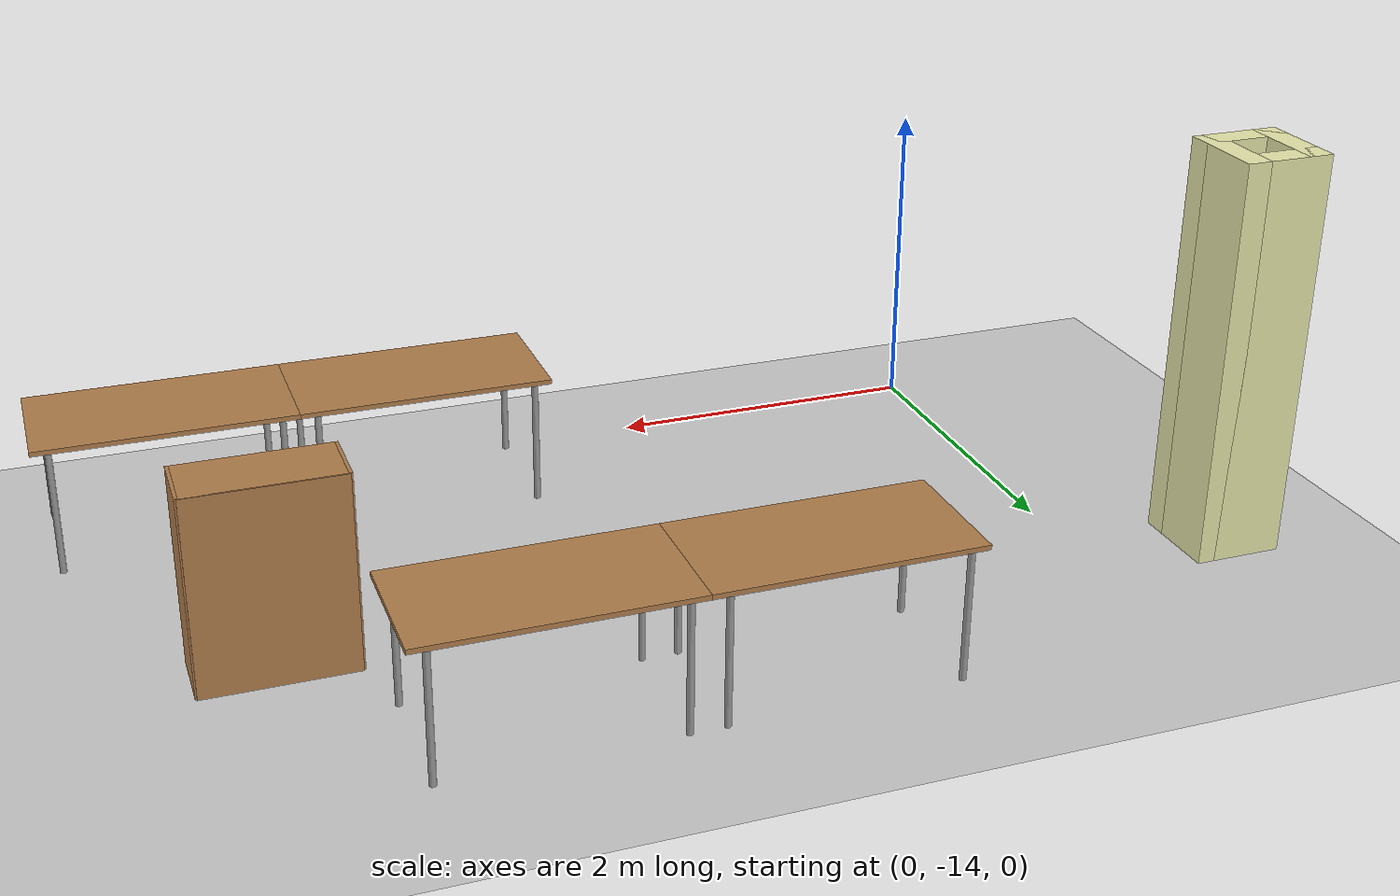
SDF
<sdf version="1.6">
 <world name="default">
  <model name="ground_plane">
   <static>1</static>
   <link name="link">
    <collision name="collision">
     <geometry><plane><normal>0 0 1</normal><size>100 100</size></plane></geometry>
     <surface><friction><ode><mu>100</mu><mu2>50</mu2></ode></friction></surface>
    </collision>
    <visual name="visual">
     <cast_shadows>0</cast_shadows>
     <geometry><plane><normal>0 0 1</normal><size>100 100</size></plane></geometry>
     <material>
      <script><uri>file://media/materials/scripts/gazebo.material</uri><name>Gazebo/Grey</name></script>
     </material>
    </visual>
   </link>
  </model>
  <model name="Building">
   <link name="Wall_88">
    <collision name="Wall_88_Collision">
     <geometry><box><size>0.55 0.15 2.5</size></box></geometry>
     <pose>0 0 1.25 0 -0 0</pose>
    </collision>
    <visual name="Wall_88_Visual">
     <pose>0 0 1.25 0 -0 0</pose>
     <geometry><box><size>0.55 0.15 2.5</size></box></geometry>
     <material>
      <script><uri>file://media/materials/scripts/gazebo.material</uri><name>Gazebo/Grey</name></script>
      <ambient>0.92 0.92 0.68 1</ambient>
     </material>
     <meta><layer>0</layer></meta>
    </visual>
    <pose>-0.9 -11.5636 0 0 -0 0</pose>
   </link>
   <link name="Wall_94">
    <collision name="Wall_94_Collision">
     <geometry><box><size>0.55 0.15 2.5</size></box></geometry>
     <pose>0 0 1.25 0 -0 0</pose>
    </collision>
    <visual name="Wall_94_Visual">
     <pose>0 0 1.25 0 -0 0</pose>
     <geometry><box><size>0.55 0.15 2.5</size></box></geometry>
     <material>
      <script><uri>file://media/materials/scripts/gazebo.material</uri><name>Gazebo/Grey</name></script>
      <ambient>0.92 0.92 0.68 1</ambient>
     </material>
     <meta><layer>0</layer></meta>
    </visual>
    <pose>-0.9 -11.1636 0 0 -0 3.14159</pose>
   </link>
   <link name="Wall_96">
    <collision name="Wall_96_Collision">
     <geometry><box><size>0.55 0.15 2.5</size></box></geometry>
     <pose>0 0 1.25 0 -0 0</pose>
    </collision>
    <visual name="Wall_96_Visual">
     <pose>0 0 1.25 0 -0 0</pose>
     <geometry><box><size>0.55 0.15 2.5</size></box></geometry>
     <material>
      <script><uri>file://media/materials/scripts/gazebo.material</uri><name>Gazebo/Grey</name></script>
      <ambient>0.92 0.92 0.68 1</ambient>
     </material>
     <meta><layer>0</layer></meta>
    </visual>
    <pose>-1.1 -11.3636 0 0 0 -1.5708</pose>
   </link>
   <link name="Wall_98">
    <collision name="Wall_98_Collision">
     <geometry><box><size>0.55 0.15 2.5</size></box></geometry>
     <pose>0 0 1.25 0 -0 0</pose>
    </collision>
    <visual name="Wall_98_Visual">
     <pose>0 0 1.25 0 -0 0</pose>
     <geometry><box><size>0.55 0.15 2.5</size></box></geometry>
     <material>
      <script><uri>file://media/materials/scripts/gazebo.material</uri><name>Gazebo/Grey</name></script>
      <ambient>0.92 0.92 0.68 1</ambient>
     </material>
     <meta><layer>0</layer></meta>
    </visual>
    <pose>-0.7 -11.3636 0 0 0 -1.5708</pose>
   </link>
   <static>1</static>
  </model>
  <model name="tablealt_0_clone_45">
   <link name="link">
    <inertial>
     <mass>1</mass>
     <inertia><ixx>1</ixx><ixy>0</ixy><ixz>0</ixz><iyy>1</iyy><iyz>0</iyz><izz>1</izz></inertia>
    </inertial>
    <visual name="back_right_leg">
     <pose>-0.68 -0.38 0.4 0 -0 0</pose>
     <geometry><cylinder><radius>0.02</radius><length>0.8</length></cylinder></geometry>
     <material>
      <script><uri>file://media/materials/scripts/gazebo.material</uri><name>Gazebo/Grey</name></script>
      <shader type="pixel"><normal_map>__default__</normal_map></shader>
      <ambient>0.3 0.3 0.3 1</ambient>
      <diffuse>0.7 0.7 0.7 1</diffuse>
      <specular>0.01 0.01 0.01 1</specular>
      <emissive>0 0 0 1</emissive>
     </material>
    </visual>
    <visual name="back_left_leg">
     <pose>-0.68 0.38 0.4 0 -0 0</pose>
     <geometry><cylinder><radius>0.02</radius><length>0.8</length></cylinder></geometry>
     <material>
      <script><uri>file://media/materials/scripts/gazebo.material</uri><name>Gazebo/Grey</name></script>
      <shader type="pixel"><normal_map>__default__</normal_map></shader>
      <ambient>0.3 0.3 0.3 1</ambient>
      <diffuse>0.7 0.7 0.7 1</diffuse>
      <specular>0.01 0.01 0.01 1</specular>
      <emissive>0 0 0 1</emissive>
     </material>
    </visual>
    <visual name="visual1">
     <pose>0 0 0.8 0 -0 0</pose>
     <geometry><box><size>1.57 0.8 0.03</size></box></geometry>
     <material>
      <script><uri>file://media/materials/scripts/gazebo.material</uri><name>Gazebo/Wood</name></script>
      <shader type="pixel"><normal_map>__default__</normal_map></shader>
      <ambient>0.92 0.92 0.68 1</ambient>
      <diffuse>1 1 1 1</diffuse>
      <specular>0.2 0.2 0.2 1</specular>
      <emissive>0 0 0 1</emissive>
     </material>
    </visual>
    <visual name="front_left_leg">
     <pose>0.68 0.38 0.4 0 -0 0</pose>
     <geometry><cylinder><radius>0.02</radius><length>0.8</length></cylinder></geometry>
     <material>
      <script><uri>file://media/materials/scripts/gazebo.material</uri><name>Gazebo/Grey</name></script>
      <shader type="pixel"><normal_map>__default__</normal_map></shader>
      <ambient>0.3 0.3 0.3 1</ambient>
      <diffuse>0.7 0.7 0.7 1</diffuse>
      <specular>0.01 0.01 0.01 1</specular>
      <emissive>0 0 0 1</emissive>
     </material>
    </visual>
    <visual name="front_right_leg">
     <pose>0.68 -0.38 0.4 0 -0 0</pose>
     <geometry><cylinder><radius>0.02</radius><length>0.8</length></cylinder></geometry>
     <material>
      <script><uri>file://media/materials/scripts/gazebo.material</uri><name>Gazebo/Grey</name></script>
      <shader type="pixel"><normal_map>__default__</normal_map></shader>
      <ambient>0.3 0.3 0.3 1</ambient>
      <diffuse>0.7 0.7 0.7 1</diffuse>
      <specular>0.01 0.01 0.01 1</specular>
      <emissive>0 0 0 1</emissive>
     </material>
    </visual>
    <collision name="front_right_leg">
     <pose>0.68 -0.38 0.4 0 -0 0</pose>
     <geometry><cylinder><radius>0.02</radius><length>0.8</length></cylinder></geometry>
     <surface>
      <friction>
       <ode><mu>1</mu><mu2>1</mu2><fdir1>0 0 0</fdir1><slip1>0</slip1><slip2>0</slip2></ode>
       <torsional>
        <coefficient>1</coefficient>
        <patch_radius>0</patch_radius>
        <surface_radius>0</surface_radius>
        <use_patch_radius>1</use_patch_radius>
        <ode><slip>0</slip></ode>
       </torsional>
      </friction>
      <bounce><restitution_coefficient>0</restitution_coefficient><threshold>1e+06</threshold></bounce>
      <contact>
       <collide_without_contact>0</collide_without_contact>
       <collide_without_contact_bitmask>1</collide_without_contact_bitmask>
       <collide_bitmask>1</collide_bitmask>
       <ode>
        <soft_cfm>0</soft_cfm>
        <soft_erp>0.2</soft_erp>
        <kp>1e+13</kp>
        <kd>1</kd>
        <max_vel>0.01</max_vel>
        <min_depth>0</min_depth>
       </ode>
       <bullet>
        <split_impulse>1</split_impulse>
        <split_impulse_penetration_threshold>-0.01</split_impulse_penetration_threshold>
        <soft_cfm>0</soft_cfm>
        <soft_erp>0.2</soft_erp>
        <kp>1e+13</kp>
        <kd>1</kd>
       </bullet>
      </contact>
     </surface>
    </collision>
    <collision name="surface">
     <pose>0 0 0.8 0 -0 0</pose>
     <geometry><box><size>1.5 0.8 0.03</size></box></geometry>
     <surface>
      <friction>
       <ode><mu>0.6</mu><mu2>0.6</mu2><fdir1>0 0 0</fdir1><slip1>0</slip1><slip2>0</slip2></ode>
       <torsional>
        <coefficient>1</coefficient>
        <patch_radius>0</patch_radius>
        <surface_radius>0</surface_radius>
        <use_patch_radius>1</use_patch_radius>
        <ode><slip>0</slip></ode>
       </torsional>
      </friction>
      <bounce><restitution_coefficient>0</restitution_coefficient><threshold>1e+06</threshold></bounce>
      <contact>
       <collide_without_contact>0</collide_without_contact>
       <collide_without_contact_bitmask>1</collide_without_contact_bitmask>
       <collide_bitmask>1</collide_bitmask>
       <ode>
        <soft_cfm>0</soft_cfm>
        <soft_erp>0.2</soft_erp>
        <kp>1e+13</kp>
        <kd>1</kd>
        <max_vel>0.01</max_vel>
        <min_depth>0</min_depth>
       </ode>
       <bullet>
        <split_impulse>1</split_impulse>
        <split_impulse_penetration_threshold>-0.01</split_impulse_penetration_threshold>
        <soft_cfm>0</soft_cfm>
        <soft_erp>0.2</soft_erp>
        <kp>1e+13</kp>
        <kd>1</kd>
       </bullet>
      </contact>
     </surface>
    </collision>
    <collision name="front_left_leg">
     <pose>0.68 0.38 0.4 0 -0 0</pose>
     <geometry><cylinder><radius>0.02</radius><length>0.8</length></cylinder></geometry>
     <surface>
      <friction>
       <ode><mu>1</mu><mu2>1</mu2><fdir1>0 0 0</fdir1><slip1>0</slip1><slip2>0</slip2></ode>
       <torsional>
        <coefficient>1</coefficient>
        <patch_radius>0</patch_radius>
        <surface_radius>0</surface_radius>
        <use_patch_radius>1</use_patch_radius>
        <ode><slip>0</slip></ode>
       </torsional>
      </friction>
      <bounce><restitution_coefficient>0</restitution_coefficient><threshold>1e+06</threshold></bounce>
      <contact>
       <collide_without_contact>0</collide_without_contact>
       <collide_without_contact_bitmask>1</collide_without_contact_bitmask>
       <collide_bitmask>1</collide_bitmask>
       <ode>
        <soft_cfm>0</soft_cfm>
        <soft_erp>0.2</soft_erp>
        <kp>1e+13</kp>
        <kd>1</kd>
        <max_vel>0.01</max_vel>
        <min_depth>0</min_depth>
       </ode>
       <bullet>
        <split_impulse>1</split_impulse>
        <split_impulse_penetration_threshold>-0.01</split_impulse_penetration_threshold>
        <soft_cfm>0</soft_cfm>
        <soft_erp>0.2</soft_erp>
        <kp>1e+13</kp>
        <kd>1</kd>
       </bullet>
      </contact>
     </surface>
    </collision>
    <collision name="back_left_leg">
     <pose>-0.68 0.38 0.4 0 -0 0</pose>
     <geometry><cylinder><radius>0.02</radius><length>0.8</length></cylinder></geometry>
     <surface>
      <friction>
       <ode><mu>1</mu><mu2>1</mu2><fdir1>0 0 0</fdir1><slip1>0</slip1><slip2>0</slip2></ode>
       <torsional>
        <coefficient>1</coefficient>
        <patch_radius>0</patch_radius>
        <surface_radius>0</surface_radius>
        <use_patch_radius>1</use_patch_radius>
        <ode><slip>0</slip></ode>
       </torsional>
      </friction>
      <bounce><restitution_coefficient>0</restitution_coefficient><threshold>1e+06</threshold></bounce>
      <contact>
       <collide_without_contact>0</collide_without_contact>
       <collide_without_contact_bitmask>1</collide_without_contact_bitmask>
       <collide_bitmask>1</collide_bitmask>
       <ode>
        <soft_cfm>0</soft_cfm>
        <soft_erp>0.2</soft_erp>
        <kp>1e+13</kp>
        <kd>1</kd>
        <max_vel>0.01</max_vel>
        <min_depth>0</min_depth>
       </ode>
       <bullet>
        <split_impulse>1</split_impulse>
        <split_impulse_penetration_threshold>-0.01</split_impulse_penetration_threshold>
        <soft_cfm>0</soft_cfm>
        <soft_erp>0.2</soft_erp>
        <kp>1e+13</kp>
        <kd>1</kd>
       </bullet>
      </contact>
     </surface>
    </collision>
    <collision name="back_right_leg">
     <pose>-0.68 -0.38 0.4 0 -0 0</pose>
     <geometry><cylinder><radius>0.02</radius><length>0.8</length></cylinder></geometry>
     <surface>
      <friction>
       <ode><mu>1</mu><mu2>1</mu2><fdir1>0 0 0</fdir1><slip1>0</slip1><slip2>0</slip2></ode>
       <torsional>
        <coefficient>1</coefficient>
        <patch_radius>0</patch_radius>
        <surface_radius>0</surface_radius>
        <use_patch_radius>1</use_patch_radius>
        <ode><slip>0</slip></ode>
       </torsional>
      </friction>
      <bounce><restitution_coefficient>0</restitution_coefficient><threshold>1e+06</threshold></bounce>
      <contact>
       <collide_without_contact>0</collide_without_contact>
       <collide_without_contact_bitmask>1</collide_without_contact_bitmask>
       <collide_bitmask>1</collide_bitmask>
       <ode>
        <soft_cfm>0</soft_cfm>
        <soft_erp>0.2</soft_erp>
        <kp>1e+13</kp>
        <kd>1</kd>
        <max_vel>0.01</max_vel>
        <min_depth>0</min_depth>
       </ode>
       <bullet>
        <split_impulse>1</split_impulse>
        <split_impulse_penetration_threshold>-0.01</split_impulse_penetration_threshold>
        <soft_cfm>0</soft_cfm>
        <soft_erp>0.2</soft_erp>
        <kp>1e+13</kp>
        <kd>1</kd>
       </bullet>
      </contact>
     </surface>
    </collision>
   </link>
   <static>1</static>
   <pose>1.98 -10.8 0 0 -0 0</pose>
  </model>
  <model name="tablealt_0_clone_46">
   <link name="link">
    <inertial>
     <mass>1</mass>
     <inertia><ixx>1</ixx><ixy>0</ixy><ixz>0</ixz><iyy>1</iyy><iyz>0</iyz><izz>1</izz></inertia>
    </inertial>
    <visual name="back_right_leg">
     <pose>-0.68 -0.38 0.4 0 -0 0</pose>
     <geometry><cylinder><radius>0.02</radius><length>0.8</length></cylinder></geometry>
     <material>
      <script><uri>file://media/materials/scripts/gazebo.material</uri><name>Gazebo/Grey</name></script>
      <shader type="pixel"><normal_map>__default__</normal_map></shader>
      <ambient>0.3 0.3 0.3 1</ambient>
      <diffuse>0.7 0.7 0.7 1</diffuse>
      <specular>0.01 0.01 0.01 1</specular>
      <emissive>0 0 0 1</emissive>
     </material>
    </visual>
    <visual name="back_left_leg">
     <pose>-0.68 0.38 0.4 0 -0 0</pose>
     <geometry><cylinder><radius>0.02</radius><length>0.8</length></cylinder></geometry>
     <material>
      <script><uri>file://media/materials/scripts/gazebo.material</uri><name>Gazebo/Grey</name></script>
      <shader type="pixel"><normal_map>__default__</normal_map></shader>
      <ambient>0.3 0.3 0.3 1</ambient>
      <diffuse>0.7 0.7 0.7 1</diffuse>
      <specular>0.01 0.01 0.01 1</specular>
      <emissive>0 0 0 1</emissive>
     </material>
    </visual>
    <visual name="visual1">
     <pose>0 0 0.8 0 -0 0</pose>
     <geometry><box><size>1.57 0.8 0.03</size></box></geometry>
     <material>
      <script><uri>file://media/materials/scripts/gazebo.material</uri><name>Gazebo/Wood</name></script>
      <shader type="pixel"><normal_map>__default__</normal_map></shader>
      <ambient>0.92 0.92 0.68 1</ambient>
      <diffuse>1 1 1 1</diffuse>
      <specular>0.2 0.2 0.2 1</specular>
      <emissive>0 0 0 1</emissive>
     </material>
    </visual>
    <visual name="front_left_leg">
     <pose>0.68 0.38 0.4 0 -0 0</pose>
     <geometry><cylinder><radius>0.02</radius><length>0.8</length></cylinder></geometry>
     <material>
      <script><uri>file://media/materials/scripts/gazebo.material</uri><name>Gazebo/Grey</name></script>
      <shader type="pixel"><normal_map>__default__</normal_map></shader>
      <ambient>0.3 0.3 0.3 1</ambient>
      <diffuse>0.7 0.7 0.7 1</diffuse>
      <specular>0.01 0.01 0.01 1</specular>
      <emissive>0 0 0 1</emissive>
     </material>
    </visual>
    <visual name="front_right_leg">
     <pose>0.68 -0.38 0.4 0 -0 0</pose>
     <geometry><cylinder><radius>0.02</radius><length>0.8</length></cylinder></geometry>
     <material>
      <script><uri>file://media/materials/scripts/gazebo.material</uri><name>Gazebo/Grey</name></script>
      <shader type="pixel"><normal_map>__default__</normal_map></shader>
      <ambient>0.3 0.3 0.3 1</ambient>
      <diffuse>0.7 0.7 0.7 1</diffuse>
      <specular>0.01 0.01 0.01 1</specular>
      <emissive>0 0 0 1</emissive>
     </material>
    </visual>
    <collision name="front_right_leg">
     <pose>0.68 -0.38 0.4 0 -0 0</pose>
     <geometry><cylinder><radius>0.02</radius><length>0.8</length></cylinder></geometry>
     <surface>
      <friction>
       <ode><mu>1</mu><mu2>1</mu2><fdir1>0 0 0</fdir1><slip1>0</slip1><slip2>0</slip2></ode>
       <torsional>
        <coefficient>1</coefficient>
        <patch_radius>0</patch_radius>
        <surface_radius>0</surface_radius>
        <use_patch_radius>1</use_patch_radius>
        <ode><slip>0</slip></ode>
       </torsional>
      </friction>
      <bounce><restitution_coefficient>0</restitution_coefficient><threshold>1e+06</threshold></bounce>
      <contact>
       <collide_without_contact>0</collide_without_contact>
       <collide_without_contact_bitmask>1</collide_without_contact_bitmask>
       <collide_bitmask>1</collide_bitmask>
       <ode>
        <soft_cfm>0</soft_cfm>
        <soft_erp>0.2</soft_erp>
        <kp>1e+13</kp>
        <kd>1</kd>
        <max_vel>0.01</max_vel>
        <min_depth>0</min_depth>
       </ode>
       <bullet>
        <split_impulse>1</split_impulse>
        <split_impulse_penetration_threshold>-0.01</split_impulse_penetration_threshold>
        <soft_cfm>0</soft_cfm>
        <soft_erp>0.2</soft_erp>
        <kp>1e+13</kp>
        <kd>1</kd>
       </bullet>
      </contact>
     </surface>
    </collision>
    <collision name="surface">
     <pose>0 0 0.8 0 -0 0</pose>
     <geometry><box><size>1.5 0.8 0.03</size></box></geometry>
     <surface>
      <friction>
       <ode><mu>0.6</mu><mu2>0.6</mu2><fdir1>0 0 0</fdir1><slip1>0</slip1><slip2>0</slip2></ode>
       <torsional>
        <coefficient>1</coefficient>
        <patch_radius>0</patch_radius>
        <surface_radius>0</surface_radius>
        <use_patch_radius>1</use_patch_radius>
        <ode><slip>0</slip></ode>
       </torsional>
      </friction>
      <bounce><restitution_coefficient>0</restitution_coefficient><threshold>1e+06</threshold></bounce>
      <contact>
       <collide_without_contact>0</collide_without_contact>
       <collide_without_contact_bitmask>1</collide_without_contact_bitmask>
       <collide_bitmask>1</collide_bitmask>
       <ode>
        <soft_cfm>0</soft_cfm>
        <soft_erp>0.2</soft_erp>
        <kp>1e+13</kp>
        <kd>1</kd>
        <max_vel>0.01</max_vel>
        <min_depth>0</min_depth>
       </ode>
       <bullet>
        <split_impulse>1</split_impulse>
        <split_impulse_penetration_threshold>-0.01</split_impulse_penetration_threshold>
        <soft_cfm>0</soft_cfm>
        <soft_erp>0.2</soft_erp>
        <kp>1e+13</kp>
        <kd>1</kd>
       </bullet>
      </contact>
     </surface>
    </collision>
    <collision name="front_left_leg">
     <pose>0.68 0.38 0.4 0 -0 0</pose>
     <geometry><cylinder><radius>0.02</radius><length>0.8</length></cylinder></geometry>
     <surface>
      <friction>
       <ode><mu>1</mu><mu2>1</mu2><fdir1>0 0 0</fdir1><slip1>0</slip1><slip2>0</slip2></ode>
       <torsional>
        <coefficient>1</coefficient>
        <patch_radius>0</patch_radius>
        <surface_radius>0</surface_radius>
        <use_patch_radius>1</use_patch_radius>
        <ode><slip>0</slip></ode>
       </torsional>
      </friction>
      <bounce><restitution_coefficient>0</restitution_coefficient><threshold>1e+06</threshold></bounce>
      <contact>
       <collide_without_contact>0</collide_without_contact>
       <collide_without_contact_bitmask>1</collide_without_contact_bitmask>
       <collide_bitmask>1</collide_bitmask>
       <ode>
        <soft_cfm>0</soft_cfm>
        <soft_erp>0.2</soft_erp>
        <kp>1e+13</kp>
        <kd>1</kd>
        <max_vel>0.01</max_vel>
        <min_depth>0</min_depth>
       </ode>
       <bullet>
        <split_impulse>1</split_impulse>
        <split_impulse_penetration_threshold>-0.01</split_impulse_penetration_threshold>
        <soft_cfm>0</soft_cfm>
        <soft_erp>0.2</soft_erp>
        <kp>1e+13</kp>
        <kd>1</kd>
       </bullet>
      </contact>
     </surface>
    </collision>
    <collision name="back_left_leg">
     <pose>-0.68 0.38 0.4 0 -0 0</pose>
     <geometry><cylinder><radius>0.02</radius><length>0.8</length></cylinder></geometry>
     <surface>
      <friction>
       <ode><mu>1</mu><mu2>1</mu2><fdir1>0 0 0</fdir1><slip1>0</slip1><slip2>0</slip2></ode>
       <torsional>
        <coefficient>1</coefficient>
        <patch_radius>0</patch_radius>
        <surface_radius>0</surface_radius>
        <use_patch_radius>1</use_patch_radius>
        <ode><slip>0</slip></ode>
       </torsional>
      </friction>
      <bounce><restitution_coefficient>0</restitution_coefficient><threshold>1e+06</threshold></bounce>
      <contact>
       <collide_without_contact>0</collide_without_contact>
       <collide_without_contact_bitmask>1</collide_without_contact_bitmask>
       <collide_bitmask>1</collide_bitmask>
       <ode>
        <soft_cfm>0</soft_cfm>
        <soft_erp>0.2</soft_erp>
        <kp>1e+13</kp>
        <kd>1</kd>
        <max_vel>0.01</max_vel>
        <min_depth>0</min_depth>
       </ode>
       <bullet>
        <split_impulse>1</split_impulse>
        <split_impulse_penetration_threshold>-0.01</split_impulse_penetration_threshold>
        <soft_cfm>0</soft_cfm>
        <soft_erp>0.2</soft_erp>
        <kp>1e+13</kp>
        <kd>1</kd>
       </bullet>
      </contact>
     </surface>
    </collision>
    <collision name="back_right_leg">
     <pose>-0.68 -0.38 0.4 0 -0 0</pose>
     <geometry><cylinder><radius>0.02</radius><length>0.8</length></cylinder></geometry>
     <surface>
      <friction>
       <ode><mu>1</mu><mu2>1</mu2><fdir1>0 0 0</fdir1><slip1>0</slip1><slip2>0</slip2></ode>
       <torsional>
        <coefficient>1</coefficient>
        <patch_radius>0</patch_radius>
        <surface_radius>0</surface_radius>
        <use_patch_radius>1</use_patch_radius>
        <ode><slip>0</slip></ode>
       </torsional>
      </friction>
      <bounce><restitution_coefficient>0</restitution_coefficient><threshold>1e+06</threshold></bounce>
      <contact>
       <collide_without_contact>0</collide_without_contact>
       <collide_without_contact_bitmask>1</collide_without_contact_bitmask>
       <collide_bitmask>1</collide_bitmask>
       <ode>
        <soft_cfm>0</soft_cfm>
        <soft_erp>0.2</soft_erp>
        <kp>1e+13</kp>
        <kd>1</kd>
        <max_vel>0.01</max_vel>
        <min_depth>0</min_depth>
       </ode>
       <bullet>
        <split_impulse>1</split_impulse>
        <split_impulse_penetration_threshold>-0.01</split_impulse_penetration_threshold>
        <soft_cfm>0</soft_cfm>
        <soft_erp>0.2</soft_erp>
        <kp>1e+13</kp>
        <kd>1</kd>
       </bullet>
      </contact>
     </surface>
    </collision>
   </link>
   <static>1</static>
   <pose>3.55 -10.8 0 0 -0 0</pose>
  </model>
  <model name="tablealt_0_clone_49">
   <link name="link">
    <inertial>
     <mass>1</mass>
     <inertia><ixx>1</ixx><ixy>0</ixy><ixz>0</ixz><iyy>1</iyy><iyz>0</iyz><izz>1</izz></inertia>
    </inertial>
    <visual name="back_right_leg">
     <pose>-0.68 -0.38 0.4 0 -0 0</pose>
     <geometry><cylinder><radius>0.02</radius><length>0.8</length></cylinder></geometry>
     <material>
      <script><uri>file://media/materials/scripts/gazebo.material</uri><name>Gazebo/Grey</name></script>
      <shader type="pixel"><normal_map>__default__</normal_map></shader>
      <ambient>0.3 0.3 0.3 1</ambient>
      <diffuse>0.7 0.7 0.7 1</diffuse>
      <specular>0.01 0.01 0.01 1</specular>
      <emissive>0 0 0 1</emissive>
     </material>
    </visual>
    <visual name="back_left_leg">
     <pose>-0.68 0.38 0.4 0 -0 0</pose>
     <geometry><cylinder><radius>0.02</radius><length>0.8</length></cylinder></geometry>
     <material>
      <script><uri>file://media/materials/scripts/gazebo.material</uri><name>Gazebo/Grey</name></script>
      <shader type="pixel"><normal_map>__default__</normal_map></shader>
      <ambient>0.3 0.3 0.3 1</ambient>
      <diffuse>0.7 0.7 0.7 1</diffuse>
      <specular>0.01 0.01 0.01 1</specular>
      <emissive>0 0 0 1</emissive>
     </material>
    </visual>
    <visual name="visual1">
     <pose>0 0 0.8 0 -0 0</pose>
     <geometry><box><size>1.57 0.8 0.03</size></box></geometry>
     <material>
      <script><uri>file://media/materials/scripts/gazebo.material</uri><name>Gazebo/Wood</name></script>
      <shader type="pixel"><normal_map>__default__</normal_map></shader>
      <ambient>0.92 0.92 0.68 1</ambient>
      <diffuse>1 1 1 1</diffuse>
      <specular>0.2 0.2 0.2 1</specular>
      <emissive>0 0 0 1</emissive>
     </material>
    </visual>
    <visual name="front_left_leg">
     <pose>0.68 0.38 0.4 0 -0 0</pose>
     <geometry><cylinder><radius>0.02</radius><length>0.8</length></cylinder></geometry>
     <material>
      <script><uri>file://media/materials/scripts/gazebo.material</uri><name>Gazebo/Grey</name></script>
      <shader type="pixel"><normal_map>__default__</normal_map></shader>
      <ambient>0.3 0.3 0.3 1</ambient>
      <diffuse>0.7 0.7 0.7 1</diffuse>
      <specular>0.01 0.01 0.01 1</specular>
      <emissive>0 0 0 1</emissive>
     </material>
    </visual>
    <visual name="front_right_leg">
     <pose>0.68 -0.38 0.4 0 -0 0</pose>
     <geometry><cylinder><radius>0.02</radius><length>0.8</length></cylinder></geometry>
     <material>
      <script><uri>file://media/materials/scripts/gazebo.material</uri><name>Gazebo/Grey</name></script>
      <shader type="pixel"><normal_map>__default__</normal_map></shader>
      <ambient>0.3 0.3 0.3 1</ambient>
      <diffuse>0.7 0.7 0.7 1</diffuse>
      <specular>0.01 0.01 0.01 1</specular>
      <emissive>0 0 0 1</emissive>
     </material>
    </visual>
    <collision name="front_right_leg">
     <pose>0.68 -0.38 0.4 0 -0 0</pose>
     <geometry><cylinder><radius>0.02</radius><length>0.8</length></cylinder></geometry>
     <surface>
      <friction>
       <ode><mu>1</mu><mu2>1</mu2><fdir1>0 0 0</fdir1><slip1>0</slip1><slip2>0</slip2></ode>
       <torsional>
        <coefficient>1</coefficient>
        <patch_radius>0</patch_radius>
        <surface_radius>0</surface_radius>
        <use_patch_radius>1</use_patch_radius>
        <ode><slip>0</slip></ode>
       </torsional>
      </friction>
      <bounce><restitution_coefficient>0</restitution_coefficient><threshold>1e+06</threshold></bounce>
      <contact>
       <collide_without_contact>0</collide_without_contact>
       <collide_without_contact_bitmask>1</collide_without_contact_bitmask>
       <collide_bitmask>1</collide_bitmask>
       <ode>
        <soft_cfm>0</soft_cfm>
        <soft_erp>0.2</soft_erp>
        <kp>1e+13</kp>
        <kd>1</kd>
        <max_vel>0.01</max_vel>
        <min_depth>0</min_depth>
       </ode>
       <bullet>
        <split_impulse>1</split_impulse>
        <split_impulse_penetration_threshold>-0.01</split_impulse_penetration_threshold>
        <soft_cfm>0</soft_cfm>
        <soft_erp>0.2</soft_erp>
        <kp>1e+13</kp>
        <kd>1</kd>
       </bullet>
      </contact>
     </surface>
    </collision>
    <collision name="surface">
     <pose>0 0 0.8 0 -0 0</pose>
     <geometry><box><size>1.5 0.8 0.03</size></box></geometry>
     <surface>
      <friction>
       <ode><mu>0.6</mu><mu2>0.6</mu2><fdir1>0 0 0</fdir1><slip1>0</slip1><slip2>0</slip2></ode>
       <torsional>
        <coefficient>1</coefficient>
        <patch_radius>0</patch_radius>
        <surface_radius>0</surface_radius>
        <use_patch_radius>1</use_patch_radius>
        <ode><slip>0</slip></ode>
       </torsional>
      </friction>
      <bounce><restitution_coefficient>0</restitution_coefficient><threshold>1e+06</threshold></bounce>
      <contact>
       <collide_without_contact>0</collide_without_contact>
       <collide_without_contact_bitmask>1</collide_without_contact_bitmask>
       <collide_bitmask>1</collide_bitmask>
       <ode>
        <soft_cfm>0</soft_cfm>
        <soft_erp>0.2</soft_erp>
        <kp>1e+13</kp>
        <kd>1</kd>
        <max_vel>0.01</max_vel>
        <min_depth>0</min_depth>
       </ode>
       <bullet>
        <split_impulse>1</split_impulse>
        <split_impulse_penetration_threshold>-0.01</split_impulse_penetration_threshold>
        <soft_cfm>0</soft_cfm>
        <soft_erp>0.2</soft_erp>
        <kp>1e+13</kp>
        <kd>1</kd>
       </bullet>
      </contact>
     </surface>
    </collision>
    <collision name="front_left_leg">
     <pose>0.68 0.38 0.4 0 -0 0</pose>
     <geometry><cylinder><radius>0.02</radius><length>0.8</length></cylinder></geometry>
     <surface>
      <friction>
       <ode><mu>1</mu><mu2>1</mu2><fdir1>0 0 0</fdir1><slip1>0</slip1><slip2>0</slip2></ode>
       <torsional>
        <coefficient>1</coefficient>
        <patch_radius>0</patch_radius>
        <surface_radius>0</surface_radius>
        <use_patch_radius>1</use_patch_radius>
        <ode><slip>0</slip></ode>
       </torsional>
      </friction>
      <bounce><restitution_coefficient>0</restitution_coefficient><threshold>1e+06</threshold></bounce>
      <contact>
       <collide_without_contact>0</collide_without_contact>
       <collide_without_contact_bitmask>1</collide_without_contact_bitmask>
       <collide_bitmask>1</collide_bitmask>
       <ode>
        <soft_cfm>0</soft_cfm>
        <soft_erp>0.2</soft_erp>
        <kp>1e+13</kp>
        <kd>1</kd>
        <max_vel>0.01</max_vel>
        <min_depth>0</min_depth>
       </ode>
       <bullet>
        <split_impulse>1</split_impulse>
        <split_impulse_penetration_threshold>-0.01</split_impulse_penetration_threshold>
        <soft_cfm>0</soft_cfm>
        <soft_erp>0.2</soft_erp>
        <kp>1e+13</kp>
        <kd>1</kd>
       </bullet>
      </contact>
     </surface>
    </collision>
    <collision name="back_left_leg">
     <pose>-0.68 0.38 0.4 0 -0 0</pose>
     <geometry><cylinder><radius>0.02</radius><length>0.8</length></cylinder></geometry>
     <surface>
      <friction>
       <ode><mu>1</mu><mu2>1</mu2><fdir1>0 0 0</fdir1><slip1>0</slip1><slip2>0</slip2></ode>
       <torsional>
        <coefficient>1</coefficient>
        <patch_radius>0</patch_radius>
        <surface_radius>0</surface_radius>
        <use_patch_radius>1</use_patch_radius>
        <ode><slip>0</slip></ode>
       </torsional>
      </friction>
      <bounce><restitution_coefficient>0</restitution_coefficient><threshold>1e+06</threshold></bounce>
      <contact>
       <collide_without_contact>0</collide_without_contact>
       <collide_without_contact_bitmask>1</collide_without_contact_bitmask>
       <collide_bitmask>1</collide_bitmask>
       <ode>
        <soft_cfm>0</soft_cfm>
        <soft_erp>0.2</soft_erp>
        <kp>1e+13</kp>
        <kd>1</kd>
        <max_vel>0.01</max_vel>
        <min_depth>0</min_depth>
       </ode>
       <bullet>
        <split_impulse>1</split_impulse>
        <split_impulse_penetration_threshold>-0.01</split_impulse_penetration_threshold>
        <soft_cfm>0</soft_cfm>
        <soft_erp>0.2</soft_erp>
        <kp>1e+13</kp>
        <kd>1</kd>
       </bullet>
      </contact>
     </surface>
    </collision>
    <collision name="back_right_leg">
     <pose>-0.68 -0.38 0.4 0 -0 0</pose>
     <geometry><cylinder><radius>0.02</radius><length>0.8</length></cylinder></geometry>
     <surface>
      <friction>
       <ode><mu>1</mu><mu2>1</mu2><fdir1>0 0 0</fdir1><slip1>0</slip1><slip2>0</slip2></ode>
       <torsional>
        <coefficient>1</coefficient>
        <patch_radius>0</patch_radius>
        <surface_radius>0</surface_radius>
        <use_patch_radius>1</use_patch_radius>
        <ode><slip>0</slip></ode>
       </torsional>
      </friction>
      <bounce><restitution_coefficient>0</restitution_coefficient><threshold>1e+06</threshold></bounce>
      <contact>
       <collide_without_contact>0</collide_without_contact>
       <collide_without_contact_bitmask>1</collide_without_contact_bitmask>
       <collide_bitmask>1</collide_bitmask>
       <ode>
        <soft_cfm>0</soft_cfm>
        <soft_erp>0.2</soft_erp>
        <kp>1e+13</kp>
        <kd>1</kd>
        <max_vel>0.01</max_vel>
        <min_depth>0</min_depth>
       </ode>
       <bullet>
        <split_impulse>1</split_impulse>
        <split_impulse_penetration_threshold>-0.01</split_impulse_penetration_threshold>
        <soft_cfm>0</soft_cfm>
        <soft_erp>0.2</soft_erp>
        <kp>1e+13</kp>
        <kd>1</kd>
       </bullet>
      </contact>
     </surface>
    </collision>
   </link>
   <static>1</static>
   <pose>3.55 -13.6 0 0 -0 0</pose>
  </model>
  <model name="tablealt_0_clone_50">
   <link name="link">
    <inertial>
     <mass>1</mass>
     <inertia><ixx>1</ixx><ixy>0</ixy><ixz>0</ixz><iyy>1</iyy><iyz>0</iyz><izz>1</izz></inertia>
    </inertial>
    <visual name="back_right_leg">
     <pose>-0.68 -0.38 0.4 0 -0 0</pose>
     <geometry><cylinder><radius>0.02</radius><length>0.8</length></cylinder></geometry>
     <material>
      <script><uri>file://media/materials/scripts/gazebo.material</uri><name>Gazebo/Grey</name></script>
      <shader type="pixel"><normal_map>__default__</normal_map></shader>
      <ambient>0.3 0.3 0.3 1</ambient>
      <diffuse>0.7 0.7 0.7 1</diffuse>
      <specular>0.01 0.01 0.01 1</specular>
      <emissive>0 0 0 1</emissive>
     </material>
    </visual>
    <visual name="back_left_leg">
     <pose>-0.68 0.38 0.4 0 -0 0</pose>
     <geometry><cylinder><radius>0.02</radius><length>0.8</length></cylinder></geometry>
     <material>
      <script><uri>file://media/materials/scripts/gazebo.material</uri><name>Gazebo/Grey</name></script>
      <shader type="pixel"><normal_map>__default__</normal_map></shader>
      <ambient>0.3 0.3 0.3 1</ambient>
      <diffuse>0.7 0.7 0.7 1</diffuse>
      <specular>0.01 0.01 0.01 1</specular>
      <emissive>0 0 0 1</emissive>
     </material>
    </visual>
    <visual name="visual1">
     <pose>0 0 0.8 0 -0 0</pose>
     <geometry><box><size>1.57 0.8 0.03</size></box></geometry>
     <material>
      <script><uri>file://media/materials/scripts/gazebo.material</uri><name>Gazebo/Wood</name></script>
      <shader type="pixel"><normal_map>__default__</normal_map></shader>
      <ambient>0.92 0.92 0.68 1</ambient>
      <diffuse>1 1 1 1</diffuse>
      <specular>0.2 0.2 0.2 1</specular>
      <emissive>0 0 0 1</emissive>
     </material>
    </visual>
    <visual name="front_left_leg">
     <pose>0.68 0.38 0.4 0 -0 0</pose>
     <geometry><cylinder><radius>0.02</radius><length>0.8</length></cylinder></geometry>
     <material>
      <script><uri>file://media/materials/scripts/gazebo.material</uri><name>Gazebo/Grey</name></script>
      <shader type="pixel"><normal_map>__default__</normal_map></shader>
      <ambient>0.3 0.3 0.3 1</ambient>
      <diffuse>0.7 0.7 0.7 1</diffuse>
      <specular>0.01 0.01 0.01 1</specular>
      <emissive>0 0 0 1</emissive>
     </material>
    </visual>
    <visual name="front_right_leg">
     <pose>0.68 -0.38 0.4 0 -0 0</pose>
     <geometry><cylinder><radius>0.02</radius><length>0.8</length></cylinder></geometry>
     <material>
      <script><uri>file://media/materials/scripts/gazebo.material</uri><name>Gazebo/Grey</name></script>
      <shader type="pixel"><normal_map>__default__</normal_map></shader>
      <ambient>0.3 0.3 0.3 1</ambient>
      <diffuse>0.7 0.7 0.7 1</diffuse>
      <specular>0.01 0.01 0.01 1</specular>
      <emissive>0 0 0 1</emissive>
     </material>
    </visual>
    <collision name="front_right_leg">
     <pose>0.68 -0.38 0.4 0 -0 0</pose>
     <geometry><cylinder><radius>0.02</radius><length>0.8</length></cylinder></geometry>
     <surface>
      <friction>
       <ode><mu>1</mu><mu2>1</mu2><fdir1>0 0 0</fdir1><slip1>0</slip1><slip2>0</slip2></ode>
       <torsional>
        <coefficient>1</coefficient>
        <patch_radius>0</patch_radius>
        <surface_radius>0</surface_radius>
        <use_patch_radius>1</use_patch_radius>
        <ode><slip>0</slip></ode>
       </torsional>
      </friction>
      <bounce><restitution_coefficient>0</restitution_coefficient><threshold>1e+06</threshold></bounce>
      <contact>
       <collide_without_contact>0</collide_without_contact>
       <collide_without_contact_bitmask>1</collide_without_contact_bitmask>
       <collide_bitmask>1</collide_bitmask>
       <ode>
        <soft_cfm>0</soft_cfm>
        <soft_erp>0.2</soft_erp>
        <kp>1e+13</kp>
        <kd>1</kd>
        <max_vel>0.01</max_vel>
        <min_depth>0</min_depth>
       </ode>
       <bullet>
        <split_impulse>1</split_impulse>
        <split_impulse_penetration_threshold>-0.01</split_impulse_penetration_threshold>
        <soft_cfm>0</soft_cfm>
        <soft_erp>0.2</soft_erp>
        <kp>1e+13</kp>
        <kd>1</kd>
       </bullet>
      </contact>
     </surface>
    </collision>
    <collision name="surface">
     <pose>0 0 0.8 0 -0 0</pose>
     <geometry><box><size>1.5 0.8 0.03</size></box></geometry>
     <surface>
      <friction>
       <ode><mu>0.6</mu><mu2>0.6</mu2><fdir1>0 0 0</fdir1><slip1>0</slip1><slip2>0</slip2></ode>
       <torsional>
        <coefficient>1</coefficient>
        <patch_radius>0</patch_radius>
        <surface_radius>0</surface_radius>
        <use_patch_radius>1</use_patch_radius>
        <ode><slip>0</slip></ode>
       </torsional>
      </friction>
      <bounce><restitution_coefficient>0</restitution_coefficient><threshold>1e+06</threshold></bounce>
      <contact>
       <collide_without_contact>0</collide_without_contact>
       <collide_without_contact_bitmask>1</collide_without_contact_bitmask>
       <collide_bitmask>1</collide_bitmask>
       <ode>
        <soft_cfm>0</soft_cfm>
        <soft_erp>0.2</soft_erp>
        <kp>1e+13</kp>
        <kd>1</kd>
        <max_vel>0.01</max_vel>
        <min_depth>0</min_depth>
       </ode>
       <bullet>
        <split_impulse>1</split_impulse>
        <split_impulse_penetration_threshold>-0.01</split_impulse_penetration_threshold>
        <soft_cfm>0</soft_cfm>
        <soft_erp>0.2</soft_erp>
        <kp>1e+13</kp>
        <kd>1</kd>
       </bullet>
      </contact>
     </surface>
    </collision>
    <collision name="front_left_leg">
     <pose>0.68 0.38 0.4 0 -0 0</pose>
     <geometry><cylinder><radius>0.02</radius><length>0.8</length></cylinder></geometry>
     <surface>
      <friction>
       <ode><mu>1</mu><mu2>1</mu2><fdir1>0 0 0</fdir1><slip1>0</slip1><slip2>0</slip2></ode>
       <torsional>
        <coefficient>1</coefficient>
        <patch_radius>0</patch_radius>
        <surface_radius>0</surface_radius>
        <use_patch_radius>1</use_patch_radius>
        <ode><slip>0</slip></ode>
       </torsional>
      </friction>
      <bounce><restitution_coefficient>0</restitution_coefficient><threshold>1e+06</threshold></bounce>
      <contact>
       <collide_without_contact>0</collide_without_contact>
       <collide_without_contact_bitmask>1</collide_without_contact_bitmask>
       <collide_bitmask>1</collide_bitmask>
       <ode>
        <soft_cfm>0</soft_cfm>
        <soft_erp>0.2</soft_erp>
        <kp>1e+13</kp>
        <kd>1</kd>
        <max_vel>0.01</max_vel>
        <min_depth>0</min_depth>
       </ode>
       <bullet>
        <split_impulse>1</split_impulse>
        <split_impulse_penetration_threshold>-0.01</split_impulse_penetration_threshold>
        <soft_cfm>0</soft_cfm>
        <soft_erp>0.2</soft_erp>
        <kp>1e+13</kp>
        <kd>1</kd>
       </bullet>
      </contact>
     </surface>
    </collision>
    <collision name="back_left_leg">
     <pose>-0.68 0.38 0.4 0 -0 0</pose>
     <geometry><cylinder><radius>0.02</radius><length>0.8</length></cylinder></geometry>
     <surface>
      <friction>
       <ode><mu>1</mu><mu2>1</mu2><fdir1>0 0 0</fdir1><slip1>0</slip1><slip2>0</slip2></ode>
       <torsional>
        <coefficient>1</coefficient>
        <patch_radius>0</patch_radius>
        <surface_radius>0</surface_radius>
        <use_patch_radius>1</use_patch_radius>
        <ode><slip>0</slip></ode>
       </torsional>
      </friction>
      <bounce><restitution_coefficient>0</restitution_coefficient><threshold>1e+06</threshold></bounce>
      <contact>
       <collide_without_contact>0</collide_without_contact>
       <collide_without_contact_bitmask>1</collide_without_contact_bitmask>
       <collide_bitmask>1</collide_bitmask>
       <ode>
        <soft_cfm>0</soft_cfm>
        <soft_erp>0.2</soft_erp>
        <kp>1e+13</kp>
        <kd>1</kd>
        <max_vel>0.01</max_vel>
        <min_depth>0</min_depth>
       </ode>
       <bullet>
        <split_impulse>1</split_impulse>
        <split_impulse_penetration_threshold>-0.01</split_impulse_penetration_threshold>
        <soft_cfm>0</soft_cfm>
        <soft_erp>0.2</soft_erp>
        <kp>1e+13</kp>
        <kd>1</kd>
       </bullet>
      </contact>
     </surface>
    </collision>
    <collision name="back_right_leg">
     <pose>-0.68 -0.38 0.4 0 -0 0</pose>
     <geometry><cylinder><radius>0.02</radius><length>0.8</length></cylinder></geometry>
     <surface>
      <friction>
       <ode><mu>1</mu><mu2>1</mu2><fdir1>0 0 0</fdir1><slip1>0</slip1><slip2>0</slip2></ode>
       <torsional>
        <coefficient>1</coefficient>
        <patch_radius>0</patch_radius>
        <surface_radius>0</surface_radius>
        <use_patch_radius>1</use_patch_radius>
        <ode><slip>0</slip></ode>
       </torsional>
      </friction>
      <bounce><restitution_coefficient>0</restitution_coefficient><threshold>1e+06</threshold></bounce>
      <contact>
       <collide_without_contact>0</collide_without_contact>
       <collide_without_contact_bitmask>1</collide_without_contact_bitmask>
       <collide_bitmask>1</collide_bitmask>
       <ode>
        <soft_cfm>0</soft_cfm>
        <soft_erp>0.2</soft_erp>
        <kp>1e+13</kp>
        <kd>1</kd>
        <max_vel>0.01</max_vel>
        <min_depth>0</min_depth>
       </ode>
       <bullet>
        <split_impulse>1</split_impulse>
        <split_impulse_penetration_threshold>-0.01</split_impulse_penetration_threshold>
        <soft_cfm>0</soft_cfm>
        <soft_erp>0.2</soft_erp>
        <kp>1e+13</kp>
        <kd>1</kd>
       </bullet>
      </contact>
     </surface>
    </collision>
   </link>
   <static>1</static>
   <pose>5.12 -13.6 0 0 -0 0</pose>
  </model>
  <model name="bookshelf_0">
   <static>1</static>
   <link name="link">
    <inertial><mass>1</mass></inertial>
    <collision name="back">
     <pose>0 0.005 0.6 0 -0 0</pose>
     <geometry><box><size>0.9 0.01 1.2</size></box></geometry>
    </collision>
    <visual name="visual1">
     <pose>0 0.005 0.6 0 -0 0</pose>
     <geometry><box><size>0.9 0.01 1.2</size></box></geometry>
     <material>
      <script><uri>file://media/materials/scripts/gazebo.material</uri><name>Gazebo/Wood</name></script>
     </material>
    </visual>
    <collision name="left_side">
     <pose>0.45 -0.195 0.6 0 -0 0</pose>
     <geometry><box><size>0.02 0.4 1.2</size></box></geometry>
    </collision>
    <visual name="visual2">
     <pose>0.45 -0.195 0.6 0 -0 0</pose>
     <geometry><box><size>0.02 0.4 1.2</size></box></geometry>
     <material>
      <script><uri>file://media/materials/scripts/gazebo.material</uri><name>Gazebo/Wood</name></script>
     </material>
    </visual>
    <collision name="right_side">
     <pose>-0.45 -0.195 0.6 0 -0 0</pose>
     <geometry><box><size>0.02 0.4 1.2</size></box></geometry>
    </collision>
    <visual name="visual3">
     <pose>-0.45 -0.195 0.6 0 -0 0</pose>
     <geometry><box><size>0.02 0.4 1.2</size></box></geometry>
     <material>
      <script><uri>file://media/materials/scripts/gazebo.material</uri><name>Gazebo/Wood</name></script>
     </material>
    </visual>
    <collision name="bottom">
     <pose>0 -0.195 0.03 0 -0 0</pose>
     <geometry><box><size>0.88 0.4 0.06</size></box></geometry>
    </collision>
    <visual name="visual4">
     <pose>0 -0.195 0.03 0 -0 0</pose>
     <geometry><box><size>0.88 0.4 0.06</size></box></geometry>
     <material>
      <script><uri>file://media/materials/scripts/gazebo.material</uri><name>Gazebo/Wood</name></script>
     </material>
    </visual>
    <collision name="top">
     <pose>0 -0.195 1.19 0 -0 0</pose>
     <geometry><box><size>0.88 0.4 0.02</size></box></geometry>
    </collision>
    <visual name="visual5">
     <pose>0 -0.195 1.19 0 -0 0</pose>
     <geometry><box><size>0.88 0.4 0.02</size></box></geometry>
     <material>
      <script><uri>file://media/materials/scripts/gazebo.material</uri><name>Gazebo/Wood</name></script>
     </material>
    </visual>
    <collision name="low_shelf">
     <pose>0 -0.195 0.43 0 -0 0</pose>
     <geometry><box><size>0.88 0.4 0.02</size></box></geometry>
    </collision>
    <visual name="visual6">
     <pose>0 -0.195 0.43 0 -0 0</pose>
     <geometry><box><size>0.88 0.4 0.02</size></box></geometry>
     <material>
      <script><uri>file://media/materials/scripts/gazebo.material</uri><name>Gazebo/Wood</name></script>
     </material>
    </visual>
    <collision name="high_shelf">
     <pose>0 -0.195 0.8 0 -0 0</pose>
     <geometry><box><size>0.88 0.4 0.02</size></box></geometry>
    </collision>
    <visual name="visual7">
     <pose>0 -0.195 0.8 0 -0 0</pose>
     <geometry><box><size>0.88 0.4 0.02</size></box></geometry>
     <material>
      <script><uri>file://media/materials/scripts/gazebo.material</uri><name>Gazebo/Wood</name></script>
     </material>
    </visual>
   </link>
   <pose>4.78407 -11.576 0 0 -0 0</pose>
  </model>
 </world>
</sdf>
